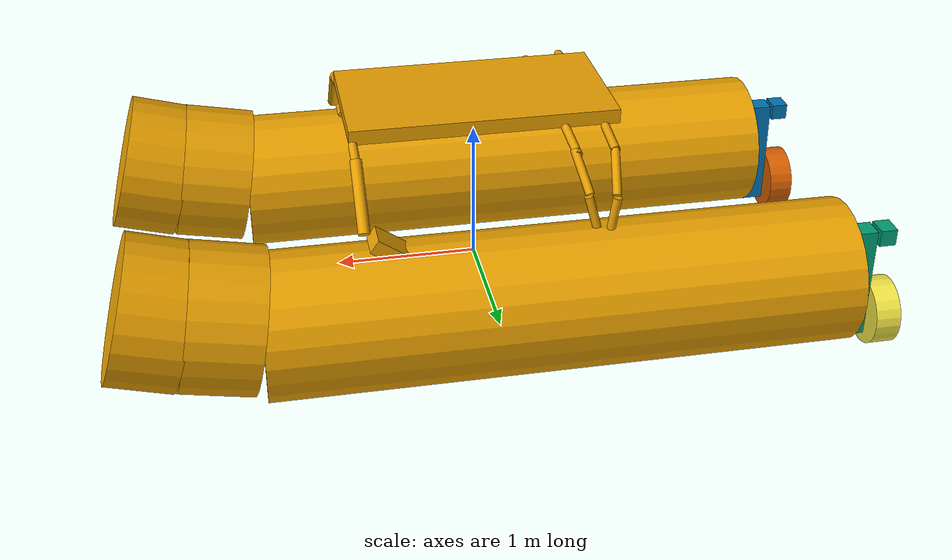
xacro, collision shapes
<?xml version="1.0"?>
<!-- 基本WAM-V，不含电池 -->
<robot xmlns:xacro="http://ros.org/wiki/xacro"
       name="$(arg name)">
  <xacro:arg name="name" default="WAM-V-No-Battery"/>
  <!-- 定义各种参数，包括推进器配置、传感器启用状态、命名空间等，提供默认值 -->
  <xacro:arg name="locked" default="false" />
  <xacro:arg name="thruster_config" default="H" />
  <xacro:arg name="camera_enabled" default="false" />
  <xacro:arg name="gps_enabled" default="false" />
  <xacro:arg name="imu_enabled" default="false" />
  <xacro:arg name="lidar_enabled" default="false" />
  <xacro:arg name="ground_truth_enabled" default="false" />
  <xacro:arg name="vrx_sensors_enabled" default="false" />
  <xacro:arg name="pinger_enabled" default="false" />
  <xacro:arg name="ball_shooter_enabled" default="false" />
  <xacro:arg name="thruster_namespace" default="thrusters/"/>
  <xacro:arg name="camera_namespace" default="cameras/"/>
  <xacro:arg name="sensor_namespace" default="sensors/"/>
  <xacro:arg name="acoustic_namespace" default="acoustics/"/>
  <xacro:arg name="shooter_namespace" default="shooters/"/>
  <!-- 注意：这只用于一些没有正确使用robotNamespace参数的传感器 -->
  <xacro:arg name="namespace" default="wamv"/>
  <!-- VRX 场景：将船系在 platform 上；多船自航仿真应关闭，避免争抢同一 child_model 导致只成功 spawn 一艘 -->
  <xacro:arg name="enable_detachable_joint" default="true"/>
  <xacro:arg name="has_extra_sensors" default="false"/>
  <xacro:arg name="extra_sensors" default=""/>

  <!-- 浮力和水动力参数 -->
  <xacro:arg name="hull_length" default="4.9"/>
  <xacro:arg name="hull_radius" default="0.213"/>
  <xacro:arg name="fluid_level" default="0.0"/>
  <xacro:arg name="xDotU" default="0.0"/>
  <xacro:arg name="yDotV" default="0.0"/>
  <xacro:arg name="nDotR" default="0.0"/>
  <xacro:arg name="xU" default="100.0"/>
  <xacro:arg name="xUU" default="150.0"/>
  <xacro:arg name="yV" default="100.0"/>
  <xacro:arg name="yVV" default="100.0"/>
  <xacro:arg name="zW" default="500.0"/>
  <xacro:arg name="kP" default="300.0"/>
  <xacro:arg name="kPP" default="600.0"/>
  <xacro:arg name="mQ" default="900.0"/>
  <xacro:arg name="mQQ" default="900.0"/>
  <xacro:arg name="nR" default="800.0"/>
  <xacro:arg name="nRR" default="800.0"/>

  <xacro:property name="thruster_namespace" value="$(arg thruster_namespace)" scope="global" />
  <xacro:property name="camera_namespace" value="$(arg camera_namespace)" scope="global" />
  <xacro:property name="sensor_namespace" value="$(arg sensor_namespace)" scope="global" />
  <xacro:property name="acoustic_namespace" value="$(arg acoustic_namespace)" scope="global" />
  <xacro:property name="shooter_namespace" value="$(arg shooter_namespace)" scope="global" />
  <xacro:property name="namespace" value="$(arg namespace)" scope="global" />

  <!-- 传感器yaml文件 -->
  <xacro:arg name="yaml_component_generation" default="false"/>
  <xacro:arg name="component_xacro_file" default = ""/>

  <!-- 推进器yaml文件 -->
  <xacro:arg name="yaml_thruster_generation" default="false"/>
  <xacro:arg name="thruster_xacro_file" default = ""/>

  <!-- === WAM-V平台 === -->
  <xacro:arg name="macros_file" default="$(find wamv_gazebo)/urdf/macros.xacro"/>
  <xacro:include filename="$(find usv_sim_full)/description/urdf/usv_gazebo.xacro"/>

  <!-- === 电池已移除 === -->

  <!-- === 推进器 === -->
  <!-- 如果提供了推进器yaml文件，则使用它 -->
  <xacro:if value="$(arg yaml_thruster_generation)">
    <xacro:usv_gazebo thruster_layout="$(arg thruster_xacro_file)"/>
  </xacro:if>

  <!-- 否则，根据thruster_config变量添加推进器 -->
  <xacro:unless value="$(arg yaml_thruster_generation)">
    <xacro:property name="thruster_conf" value="$(arg thruster_config)"/>

    <!-- 默认WAM-V，带有两个后部推进器 -->
    <xacro:if value="${thruster_conf == 'H'}">
       <xacro:usv_gazebo thruster_layout="$(find wamv_gazebo)/urdf/thruster_layouts/wamv_aft_thrusters.xacro"/>
    </xacro:if>

    <!-- "T"型推进器配置的WAMV -->
    <xacro:if value="${thruster_conf == 'T'}">
      <xacro:usv_gazebo thruster_layout="$(find wamv_gazebo)/urdf/thruster_layouts/wamv_t_thrusters.xacro"/>
    </xacro:if>

    <!-- "X"型推进器配置的WAMV -->
    <xacro:if value="${thruster_conf == 'X'}">
      <xacro:usv_gazebo thruster_layout="$(find wamv_gazebo)/urdf/thruster_layouts/wamv_x_thrusters.xacro"/>
    </xacro:if>

    <!-- 自定义推进器配置 -->
    <xacro:if value="${thruster_conf == 'CUSTOM'}">
      <xacro:usv_gazebo thruster_layout="$(find usv_sim_full)/description/urdf/custom_thrusters.xacro"/>
    </xacro:if>
  </xacro:unless>

  <!-- === [解]锁定机器人到世界（VRX platform）；多船时关闭 enable_detachable_joint === -->
  <xacro:if value="$(arg enable_detachable_joint)">
    <gazebo>
      <plugin filename="gz-sim-detachable-joint-system" name="gz::sim::systems::DetachableJoint">
        <parent_link>$(arg namespace)/base_link</parent_link>
        <child_model>platform</child_model>
        <child_link>dummy_upper</child_link>
        <topic>/vrx/release</topic>
        <suppress_child_warning>true</suppress_child_warning>
      </plugin>
    </gazebo>
  </xacro:if>

  <!-- === TF变换 === -->
  <!-- 发布机器人状态信息 -->
  <gazebo>
    <plugin filename="libgz-sim-pose-publisher-system.so"
      name="gz::sim::systems::PosePublisher">
      <publish_link_pose>false</publish_link_pose>
      <publish_sensor_pose>true</publish_sensor_pose>
      <publish_collision_pose>false</publish_collision_pose>
      <publish_visual_pose>false</publish_visual_pose>
      <publish_nested_model_pose>false</publish_nested_model_pose>
      <publish_model_pose>false</publish_model_pose>
      <use_pose_vector_msg>true</use_pose_vector_msg>
      <static_publisher>false</static_publisher>
      <static_update_frequency>1</static_update_frequency>
    </plugin>

    <plugin
      filename="gz-sim-joint-state-publisher-system"
      name="gz::sim::systems::JointStatePublisher">
    </plugin>
  </gazebo>

  <!-- === 传感器 === -->
  <!-- 如果提供了传感器yaml文件，则使用它 -->
  <xacro:if value="$(arg yaml_component_generation)">
    <xacro:include filename="$(arg component_xacro_file)"/>
    <xacro:yaml_components />

    <!-- 添加CPU外壳 -->
    <xacro:include filename="$(find usv_sim_full)/description/urdf/cpu_cases.xacro" />
    <xacro:cpu_cases position="-0.15 0 1.53" orientation="0 0 0"/>
  </xacro:if>

  <!-- 否则，根据启用变量添加传感器 -->
  <xacro:unless value="$(arg yaml_component_generation)">
    <!-- 添加前摄像头 -->
    <xacro:if value="$(arg camera_enabled)">
      <xacro:wamv_camera name="front_camera" y="0.3" x="0.75" P="${radians(15)}" />
    </xacro:if>

    <!-- 添加模拟GPS -->
    <xacro:if value="$(arg gps_enabled)">
      <xacro:wamv_gps name="gps_wamv" x="-0.85" />
    </xacro:if>

    <!-- 添加模拟IMU -->
    <xacro:if value="$(arg imu_enabled)">
      <xacro:wamv_imu name="imu_wamv" y="-0.2" />
    </xacro:if>

    <!-- 添加3D激光雷达 -->
    <xacro:if value="$(arg lidar_enabled)">
      <xacro:lidar name="lidar_wamv" y="-0.3" type="16_beam"/>
    </xacro:if>

    <!-- 添加P3D真实值 -->
    <xacro:if value="$(arg ground_truth_enabled)">
      <xacro:wamv_p3d name="p3d_wamv"/>
    </xacro:if>

    <!-- 添加声学信标 -->
    <xacro:if value="$(arg pinger_enabled)">
      <xacro:wamv_pinger sensor_name="receiver" position="-528 191 -2.0" />
    </xacro:if>

    <!-- 添加球发射器（默认俯仰角：~-60度） -->
    <xacro:if value="$(arg ball_shooter_enabled)">
      <xacro:wamv_ball_shooter name="ball_shooter" x="0.54" y="0.30" z="1.296" pitch="-1.04"/>
    </xacro:if>

    <!-- ==== VRX传感器配置 ==== -->
    <xacro:if value="$(arg vrx_sensors_enabled)">

      <!-- 添加CPU外壳 -->
      <xacro:include filename="$(find usv_sim_full)/description/urdf/cpu_cases.xacro" />
      <xacro:cpu_cases position="-0.15 0 1.53" orientation="0 0 0"/>

      <!-- 添加一个立体相机对 -->
      <xacro:wamv_camera name="front_left_camera" y="0.1" x="0.75" P="${radians(15)}" />
      <xacro:wamv_camera name="front_right_camera" y="-0.1" x="0.75" P="${radians(15)}" />

      <!-- 添加一个朝右的相机 -->
      <xacro:wamv_camera name="middle_right_camera" y="-0.45" P="${radians(15)}" Y="${radians(-90)}" post_Y="${radians(-90)}" />

      <!-- 添加模拟GPS -->
      <xacro:wamv_gps name="gps_wamv" x="-0.85" />

      <!-- 添加模拟IMU -->
      <xacro:wamv_imu name="imu_wamv" y="-0.2" />

      <!-- 添加3D激光雷达 -->
      <xacro:lidar name="lidar_wamv" type="16_beam"/>

      <!-- 添加声学信标 -->
      <xacro:wamv_pinger sensor_name="receiver" position="-528 191 -2.0" />

      <!-- 添加球发射器（默认俯仰角：~-60度） -->
      <xacro:wamv_ball_shooter name="ball_shooter" x="0.54" y="0.30" z="1.296" pitch="-1.04"/>

    </xacro:if>

  </xacro:unless>

  <!-- === 包含额外传感器配置 === -->
  <xacro:if value="$(arg has_extra_sensors)">
    <xacro:include filename="$(arg extra_sensors)" />
  </xacro:if>

  <!-- === Gazebo 原生环境动力学插件 === -->
  <gazebo>
    <!-- 四个浮力点由同一插件原子更新，避免左右参数切换不同步。 -->
    <plugin filename="libSurface.so" name="vrx::Surface">
      <link_name>$(arg namespace)/base_link</link_name>
      <!-- 一个插件等效原来的左右双船体，总排水长度为单体的两倍。 -->
      <hull_length>${2.0 * float('$(arg hull_length)')}</hull_length>
      <hull_radius>$(arg hull_radius)</hull_radius>
      <fluid_level>$(arg fluid_level)</fluid_level>
      <points>
        <point>0.6 1.03 0</point>
        <point>-1.4 1.03 0</point>
        <point>0.6 -1.03 0</point>
        <point>-1.4 -1.03 0</point>
      </points>
      <wavefield>
        <topic>/vrx/wavefield/parameters</topic>
        <wave>
          <model>PMS</model>
          <period>5.0</period>
          <direction>0.0</direction>
          <gain>0.3</gain>
          <steepness>0.0</steepness>
        </wave>
      </wavefield>
    </plugin>

    <plugin filename="gz-sim-hydrodynamics-system" name="gz::sim::systems::Hydrodynamics">
      <link_name>$(arg namespace)/base_link</link_name>
      <!-- Gazebo Hydrodynamics uses signed SNAME derivatives. -->
      <xDotU>${-float('$(arg xDotU)')}</xDotU>
      <yDotV>${-float('$(arg yDotV)')}</yDotV>
      <nDotR>${-float('$(arg nDotR)')}</nDotR>
      <xU>${-float('$(arg xU)')}</xU>
      <xUabsU>${-float('$(arg xUU)')}</xUabsU>
      <yV>${-float('$(arg yV)')}</yV>
      <yVabsV>${-float('$(arg yVV)')}</yVabsV>
      <zW>${-float('$(arg zW)')}</zW>
      <kP>${-float('$(arg kP)')}</kP>
      <kPabsP>${-float('$(arg kPP)')}</kPabsP>
      <mQ>${-float('$(arg mQ)')}</mQ>
      <mQabsQ>${-float('$(arg mQQ)')}</mQabsQ>
      <nR>${-float('$(arg nR)')}</nR>
      <nRabsR>${-float('$(arg nRR)')}</nRabsR>
      <disable_added_mass>true</disable_added_mass>
      <disable_coriolis>true</disable_coriolis>
      <default_current>0 0 0</default_current>
    </plugin>

    <plugin filename="libUSVWind.so" name="vrx::USVWind">
      <wind_obj>
        <name>$(arg namespace)</name>
        <link_name>$(arg namespace)/base_link</link_name>
        <coeff_vector>0.5 0.5 0.33</coeff_vector>
      </wind_obj>
      <wind_direction>0</wind_direction>
      <wind_mean_velocity>0.0</wind_mean_velocity>
      <var_wind_gain_constants>0</var_wind_gain_constants>
      <var_wind_time_constants>2</var_wind_time_constants>
      <random_seed>10</random_seed>
      <update_rate>10</update_rate>
      <topic_wind_velocity_cmd>/vrx/wind/velocity_cmd</topic_wind_velocity_cmd>
      <topic_wind_speed>/vrx/debug/wind/speed</topic_wind_speed>
      <topic_wind_direction>/vrx/debug/wind/direction</topic_wind_direction>
    </plugin>
  </gazebo>

</robot>

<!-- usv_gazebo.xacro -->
<robot xmlns:xacro="http://ros.org/wiki/xacro">
  <!-- Macro to create a USV with dynamics plugins and a customizeable thruster layout -->
  <xacro:macro name="usv_gazebo" params="thruster_layout">
    <!-- Defines the base vehicle -->
    <xacro:include filename="$(find usv_sim_full)/description/urdf/wamv_base.urdf.xacro" />
    <!-- Thruster Layout -->
    <xacro:include filename="${thruster_layout}"/>
    <!-- Dynamics are attached once in the top-level robot xacro. -->
  </xacro:macro>
</robot>

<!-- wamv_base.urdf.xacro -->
<robot xmlns:xacro="http://ros.org/wiki/xacro" name="wam-v">
  <!-- Required arg for melodic and kinetic... -->
  <xacro:arg name="namespace" default="wamv"/>
  <!-- session_manager overrides（full_config robot_*.overrides） -->
  <xacro:arg name="mass" default="1900.0"/>
  <xacro:arg name="ixx" default="1200"/>
  <xacro:arg name="iyy" default="4000"/>
  <xacro:arg name="izz" default="4500"/>
  <xacro:arg name="visual_mesh" default="package://vrx_gz/models/body-Base/mesh/M5_body.dae"/>
  <xacro:property name="namespace" value="$(arg namespace)" scope="global" />
  <!-- Macro for creating the main collisions as simple shapes. -->
  <xacro:macro name="main_collisions" params="prefix reflect:=1">
    <!-- Main float -->
    <collision name="${prefix}_float">
      <origin xyz="-0.4 ${1.03*reflect} 0.2" rpy="${0*reflect} 1.57 0" />
      <geometry>
        <cylinder length="4" radius="0.5" />
      </geometry>
    </collision>

    <collision name="${prefix}_mid_float">
      <origin xyz="1.85 ${1.03*reflect} 0.3" rpy="${0*reflect} 1.38 0" />
      <geometry>
        <cylinder length="0.5" radius="0.5" />
      </geometry>
    </collision>
    <collision name="${prefix}_front_float">
      <origin xyz="2.3 ${1.03*reflect} 0.4" rpy="${0*reflect} 1.3 0" />
      <geometry>
        <cylinder length="0.45" radius="0.5" />
      </geometry>
    </collision>

    <!-- Front beam -->
    <collision name="front_${prefix}_beam_lower">
      <origin xyz="0.9 ${0.85*reflect} 1" rpy="${0.78*reflect} 0 0" />
      <geometry>
        <cylinder length="0.5" radius="0.04" />
      </geometry>
    </collision>

    <collision name="front_${prefix}_beam_upper">
      <origin xyz="0.9 ${0.6*reflect} 1.18" rpy="${1.35*reflect} 0 0" />
      <geometry>
        <cylinder length="0.2" radius="0.03" />
      </geometry>
    </collision>

    <!-- Mid beam -->
    <collision name="mid_${prefix}_beam_lower">
      <origin xyz="-0.65 ${0.99*reflect} 0.7" rpy="${0.1*reflect} 0.25 0" />
      <geometry>
        <cylinder length="0.45" radius="0.03" />
      </geometry>
    </collision>

    <collision name="mid_${prefix}_beam_medium">
      <origin xyz="-0.57 ${0.87*reflect} 1.05" rpy="${0.75*reflect} 0.25 0" />
      <geometry>
        <cylinder length="0.32" radius="0.03" />
      </geometry>
    </collision>

    <collision name="mid_${prefix}_beam_upper">
      <origin xyz="-0.55 ${0.65*reflect} 1.17" rpy="${1.35*reflect} 0.25 0" />
      <geometry>
        <cylinder length="0.3" radius="0.03" />
      </geometry>
    </collision>

    <!-- Rear beam -->
    <collision name="rear_${prefix}_beam_lower">
      <origin xyz="-0.74 ${1.03*reflect} 0.7" rpy="${0*reflect} -0.15 0" />
      <geometry>
        <cylinder length="0.45" radius="0.03" />
      </geometry>
    </collision>

    <collision name="rear_${prefix}_beam_medium">
      <origin xyz="-0.79 ${0.91*reflect} 1.05" rpy="${0.75*reflect} -0.15 0" />
      <geometry>
        <cylinder length="0.32" radius="0.03" />
      </geometry>
    </collision>

    <collision name="rear_${prefix}_beam_upper">
      <origin xyz="-0.81 ${0.67*reflect} 1.18" rpy="${1.45*reflect} -0.15 0" />
      <geometry>
        <cylinder length="0.3" radius="0.03" />
      </geometry>
    </collision>

    <!-- Joint -->
    <collision name="${prefix}_joint">
      <origin xyz="0.58 ${1.03*reflect} 0.6" rpy="${0*reflect} -0.6 0" />
      <geometry>
        <box size="0.65 0.2 0.1" />
      </geometry>
    </collision>
  </xacro:macro>

  <!-- Basic model of the 16' WAM-V USV -->
  <!-- KDL 要求根 link 无 inertial；惯性放在子 link，Gazebo lumping 后仍保留 base_link 名称 -->
  <link name="${namespace}/base_link">
    <visual>
      <geometry>
        <mesh filename="$(arg visual_mesh)"/>
      </geometry>
    </visual>
<!-- src/my_wamv/blade_R.dae -->
    <!-- Left base collisions -->
    <xacro:main_collisions prefix="left" reflect="1" />

    <!-- Right side collisions -->
    <xacro:main_collisions prefix="right" reflect="-1" />

     <!-- Top base -->
    <collision name="top_base">
      <origin xyz="0 -0 1.25" rpy="0 0 0" />
      <geometry>
        <box size="1.85 1 0.1" />
      </geometry>
    </collision>
  </link>

  <joint name="${namespace}/base_footprint_joint" type="fixed">
    <parent link="${namespace}/base_link"/>
    <child link="${namespace}/base_footprint"/>
    <origin xyz="0 0 0" rpy="0 0 0"/>
  </joint>

  <link name="${namespace}/base_footprint">
    <inertial>
      <!-- From WAM-V spec sheet; mass/ixx/iyy/izz 可由 full_config overrides 覆盖 -->
      <mass value="$(arg mass)"/>
      <origin xyz="0 0 -0.2" rpy="0 0 0"/>
      <!-- 惯性张量根据 1.9 吨、5m长、2.5m宽估算 -->
      <inertia ixx="$(arg ixx)" ixy="0" ixz="0" iyy="$(arg iyy)" iyz="0" izz="$(arg izz)"/>
    </inertial>
  </link>

  <gazebo>
    <enable_wind>true</enable_wind>
  </gazebo>

  <gazebo reference="${namespace}/base_link">
    <visual>
      <material>
        <!-- 使用您想要的纯色通道，格式为 Red Green Blue Alpha (0~1之间) -->
        <!-- 下面这个例子是开启大红色 -->
        <ambient>0.4 0.4 0.4 1.0</ambient>
        <diffuse>0.5 0.5 0.5 1.0</diffuse>
        <specular>0.1 0.1 0.1 1.0</specular>
        <emissive>0.0 0.0 0.0 1.0</emissive>

        <!-- PBR贴图部分注释掉 -->
      </material>
    </visual>

    <sensor type="contact" name="contact_sensor">
      <contact>
        <!-- collisions are renamed during urdf -> sdf fixed joint lumping -->
        <collision>${namespace}/base_link_fixed_joint_lump__top_base_collision_24</collision>
        <collision>${namespace}/base_link_fixed_joint_lump__left_float_collision</collision>
        <collision>${namespace}/base_link_fixed_joint_lump__left_mid_float_collision_1</collision>
        <collision>${namespace}/base_link_fixed_joint_lump__left_front_float_collision_2</collision>
        <collision>${namespace}/base_link_fixed_joint_lump__right_float_collision_12</collision>
        <collision>${namespace}/base_link_fixed_joint_lump__right_mid_float_collision_13</collision>
        <collision>${namespace}/base_link_fixed_joint_lump__right_front_float_collision_14</collision>
        <topic>/vrx/contacts</topic>
      </contact>
      <always_on>1</always_on>
      <update_rate>5</update_rate>
    </sensor>
  </gazebo>

</robot>

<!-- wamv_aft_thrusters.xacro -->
<robot xmlns:xacro="http://ros.org/wiki/xacro">
  <xacro:include filename="$(find wamv_description)/urdf/thrusters/engine.xacro" />
  <xacro:engine prefix="left" position="-2.373776 1.027135 0.318237" />
  <xacro:engine prefix="right" position="-2.373776 -1.027135 0.318237" />
  <gazebo>
    <plugin name="wamv_gazebo_thrust" filename="libusv_gazebo_thrust_plugin.so">
      <cmdTimeout>1.0</cmdTimeout>
      <robotNamespace>${namespace}</robotNamespace>
      <xacro:include filename="$(find wamv_gazebo)/urdf/thruster_layouts/wamv_gazebo_thruster_config.xacro" />
      <xacro:wamv_gazebo_thruster_config name="left" />
      <xacro:wamv_gazebo_thruster_config name="right" />
    </plugin>
  </gazebo>
</robot>

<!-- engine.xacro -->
<robot xmlns:xacro="http://ros.org/wiki/xacro" name="wam-v-two-engines">
  <!-- Macro for inserting an engine with its propeller. -->
  <xacro:macro name="engine" params="prefix position:='0 0 0' orientation:='0 0 0'">
    <link name="${namespace}/${prefix}_engine_link">
      <visual>
        <geometry>
          <mesh filename="package://vrx_gz/models/engine/mesh/engine.dae"/>
        </geometry>
      </visual>
      <collision name="${prefix}_engine_vertical_axis_collision">
        <origin xyz="-0.16 0 -0.24" rpy="0 0 0" />
        <geometry>
          <box size="0.2 0.15 0.83" />
        </geometry>
      </collision>
      <collision name="${prefix}_engine_rear_end_collision">
        <origin xyz="-0.34 0 0.12" rpy="0 0 0" />
        <geometry>
          <box size="0.12 0.15 0.12" />
        </geometry>
      </collision>
      <inertial>
        <mass value="15"/>
        <inertia ixx="0.889245" ixy="0.0" ixz="0.0" iyy="0.911125" iyz="0.0" izz="0.078125"/>
      </inertial>
    </link>

    <link name="${namespace}/${prefix}_propeller_link">
      <visual>
        <geometry>
          <mesh filename="package://vrx_gz/models/propeller/mesh/propeller.dae"/>
        </geometry>
      </visual>
      <collision name="${prefix}_propeller_collision">
        <origin xyz="-0.08 0 0" rpy="0 1.57 0" />
        <geometry>
          <cylinder length="0.18" radius="0.24" />
        </geometry>
      </collision>
      <inertial>
        <mass value="0.5"/>
        <inertia ixx="0.008545" ixy="0.0" ixz="0.0" iyy="0.008545" iyz="0.0" izz="0.0144"/>
      </inertial>
    </link>

    <joint name="${namespace}/${prefix}_chassis_engine_joint" type="revolute">
      <axis xyz="0 0 1"/>
      <limit lower="${-pi}" upper="${pi}" effort="10" velocity="10"/>
      <origin xyz="${position}" rpy="${orientation}"/>
      <parent link="${namespace}/base_link"/>
      <child link="${namespace}/${prefix}_engine_link"/>
    </joint>

    <joint name="${namespace}/${prefix}_engine_propeller_joint" type="continuous">
      <axis rpy="0 0 0" xyz="1 0 0"/>
      <parent link="${namespace}/${prefix}_engine_link"/>
      <child link="${namespace}/${prefix}_propeller_link"/>
      <origin rpy="0 0 0" xyz="-0.278156 0 -0.509371"/>
      <limit effort="100" velocity="100" />
      <dynamics friction="0.05" damping="0.05" />
    </joint>
  </xacro:macro>
</robot>
